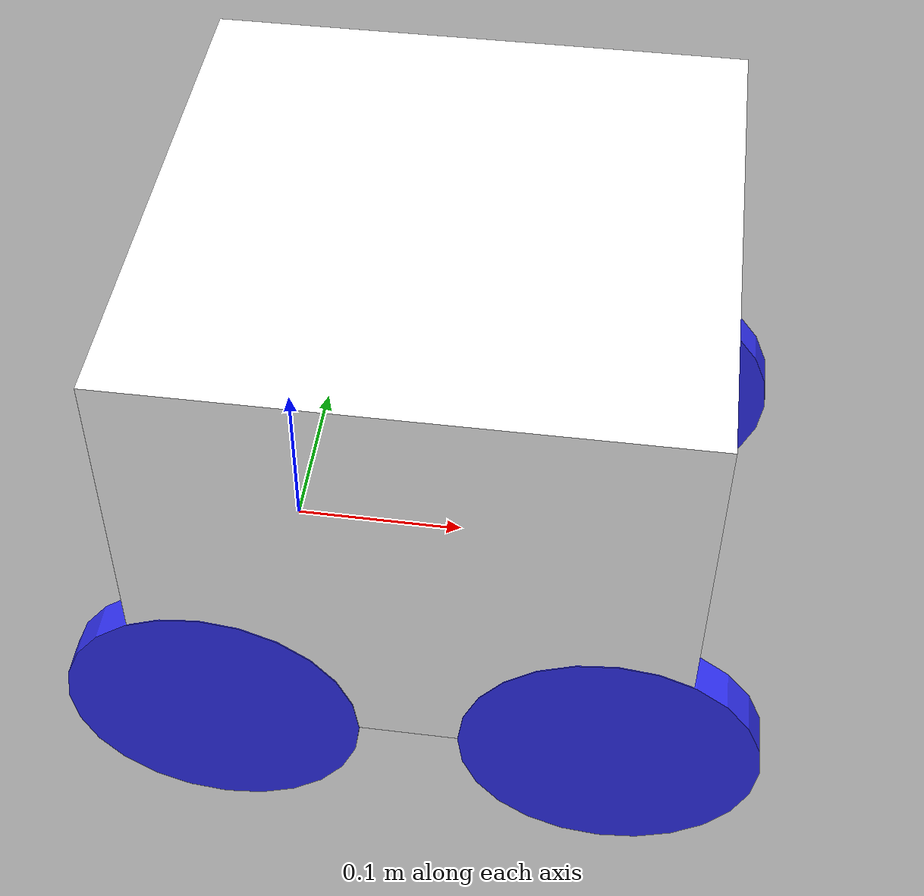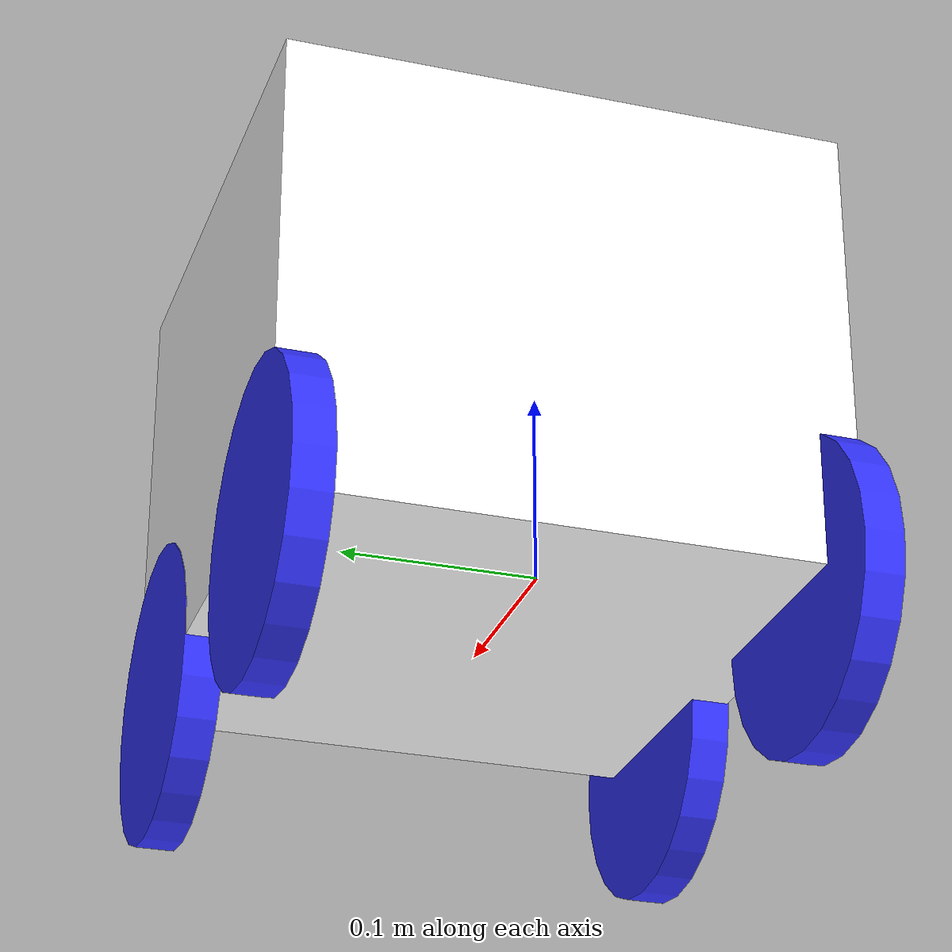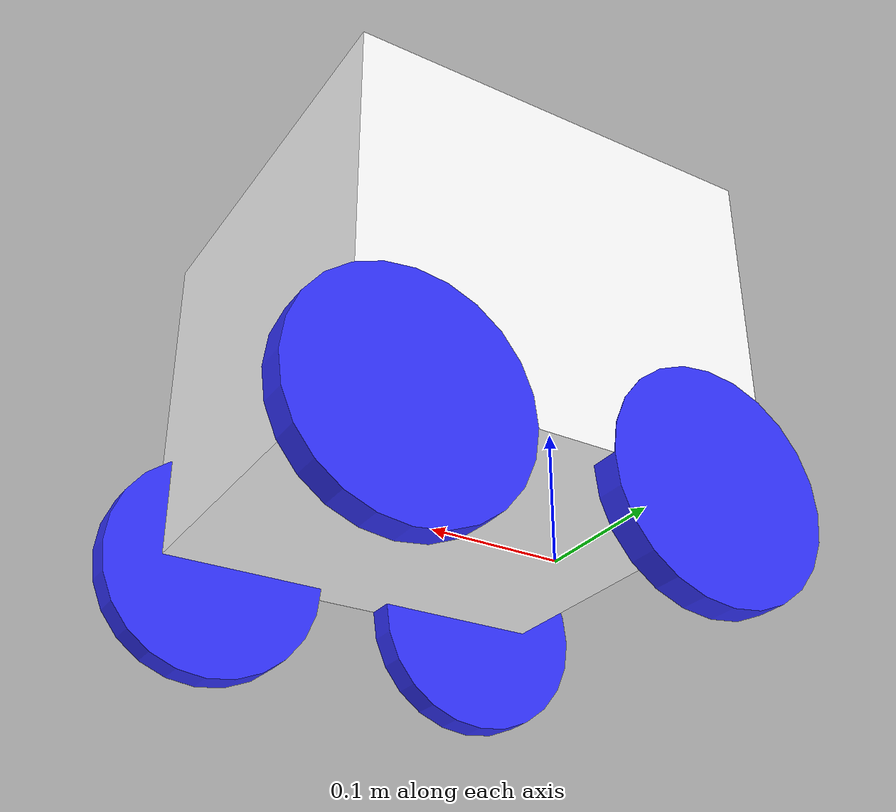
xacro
<?xml version="1.0"?>
<robot xmlns:xacro="http://www.ros.org/wiki/xacro" >

    <xacro:include filename="inertial_macros.xacro"/>

    <material name="white">
        <color rgba="1 1 1 1" />
    </material>

    <material name="orange">
        <color rgba="1 0.3 0.1 1"/>
    </material>

    <material name="blue">
        <color rgba="0.2 0.2 1 1"/>
    </material>

    <material name="black">
        <color rgba="0 0 0 1"/>
    </material>

    <!-- BASE LINK -->

    <link name="base_link">

    </link>

    <!-- CHASSIS LINK -->

    <joint name="chassis_joint" type="fixed">
        <parent link="base_link"/>
        <child link="chassis"/>
        <origin xyz="-0.1 0 0"/>
    </joint>

    <link name="chassis">
        <visual>
            <origin xyz="0.19 0 0.125"/>
            <geometry>
                <box size="0.3 0.3 0.25"/>
            </geometry>
            <material name="white"/>
        </visual>
        <collision>
            <origin xyz="0.19 0 0.125"/>
            <geometry>
                <box size="0.3 0.3 0.15"/>
            </geometry>
        </collision>
        <xacro:inertial_box mass="0.5" x="0.3" y="0.3" z="0.15">
            <origin xyz="0.15 0 0.075" rpy="0 0 0"/>
        </xacro:inertial_box>
    </link>

    <gazebo reference="chassis">
        <material>Gazebo/White</material>
    </gazebo>

    <!-- LEFT BACK WHEEL LINK -->

    <joint name="left_back_wheel_joint" type="continuous">
        <parent link="base_link"/>
        <child link="left_back_wheel"/>
        <origin xyz="-0.02 0.1400242 0" rpy="-${pi/2} 0 0" />
        <axis xyz="0 0 1"/>
    </joint>

    <link name="left_back_wheel">
        <visual>
            <geometry>
                <cylinder radius="0.08255" length="0.020955"/>
            </geometry>
            <material name="blue"/>
        </visual>
        <collision>
            <geometry>
                <cylinder radius="0.08255" length="0.020955"/>
            </geometry>
        </collision>
        <xacro:inertial_cylinder mass="0.1" length="0.020955" radius="0.08255">
            <origin xyz="0 0 0" rpy="0 0 0"/>
        </xacro:inertial_cylinder>
    </link>

    <gazebo reference="left_back_wheel">
        <material>Gazebo/Blue</material>
    </gazebo>

    <!-- RIGHT BACK WHEEL LINK -->

    <joint name="right_back_wheel_joint" type="continuous">
        <parent link="base_link"/>
        <child link="right_back_wheel"/>
        <origin xyz="-0.02 -0.1400242 0" rpy="${pi/2} 0 0" />
        <axis xyz="0 0 -1"/>
    </joint>

    <link name="right_back_wheel">
        <visual>
            <geometry>
                <cylinder radius="0.08255" length="0.020955"/>
            </geometry>
            <material name="blue"/>
        </visual>
        <collision>
            <geometry>
                <cylinder radius="0.08255" length="0.020955"/>
            </geometry>
        </collision>
        <xacro:inertial_cylinder mass="0.1" length="0.020955" radius="0.08255">
            <origin xyz="0 0 0" rpy="0 0 0"/>
        </xacro:inertial_cylinder>
    </link>

    <gazebo reference="right_back_wheel">
        <material>Gazebo/Blue</material>
    </gazebo>

    <!-- LEFT FRONT WHEEL LINK -->

    <joint name="left_front_wheel_joint" type="continuous">
        <parent link="base_link"/>
        <child link="left_front_wheel"/>
        <origin xyz="0.2 0.1400242 0" rpy="-${pi/2} 0 0" />
        <axis xyz="0 0 1"/>
    </joint>

    <link name="left_front_wheel">
        <visual>
            <geometry>
                <cylinder radius="0.08255" length="0.020955"/>
            </geometry>
            <material name="blue"/>
        </visual>
        <collision>
            <geometry>
                <cylinder radius="0.08255" length="0.020955"/>
            </geometry>
        </collision>
        <xacro:inertial_cylinder mass="0.1" length="0.020955" radius="0.08255">
            <origin xyz="0 0 0" rpy="0 0 0"/>
        </xacro:inertial_cylinder>
    </link>

    <gazebo reference="left_front_wheel">
        <material>Gazebo/Blue</material>
    </gazebo>

    <!-- RIGHT FRONT WHEEL LINK -->

    <joint name="right_front_wheel_joint" type="continuous">
        <parent link="base_link"/>
        <child link="right_front_wheel"/>
        <origin xyz="0.2 -0.1400242 0" rpy="${pi/2} 0 0" />
        <axis xyz="0 0 -1"/>
    </joint>

    <link name="right_front_wheel">
        <visual>
            <geometry>
                <cylinder radius="0.08255" length="0.020955"/>
            </geometry>
            <material name="blue"/>
        </visual>
        <collision>
            <geometry>
                <cylinder radius="0.08255" length="0.020955"/>
            </geometry>
        </collision>
        <xacro:inertial_cylinder mass="0.1" length="0.020955" radius="0.08255">
            <origin xyz="0 0 0" rpy="0 0 0"/>
        </xacro:inertial_cylinder>
    </link>

    <gazebo reference="right_front_wheel">
        <material>Gazebo/Blue</material>
        <mu1 value="0.001"/>
        <mu2 value="0.001"/>
    </gazebo>

</robot>

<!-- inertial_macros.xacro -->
<robot xmlns:xacro="http://www.ros.org/wiki/xacro">

  <!-- box inertial macro with explicit origin parameters -->
  <xacro:macro name="inertial_box"
               params="mass:=1.0 x:=0.1 y:=0.1 z:=0.1
                       origin_xyz:='0 0 0' origin_rpy:='0 0 0'">
    <inertial>
      <origin xyz="${origin_xyz}" rpy="${origin_rpy}"/>
      <mass value="${mass}"/>
      <inertia
        ixx="${mass*(y*y + z*z)/12}" ixy="0" ixz="0"
        iyy="${mass*(x*x + z*z)/12}" iyz="0"
        izz="${mass*(x*x + y*y)/12}"
      />
    </inertial>
  </xacro:macro>

  <!-- cylinder inertial macro with explicit origin parameters -->
  <xacro:macro name="inertial_cylinder"
               params="mass:=1.0 radius:=0.1 length:=0.1
                       origin_xyz:='0 0 0' origin_rpy:='0 0 0'">
    <inertial>
      <origin xyz="${origin_xyz}" rpy="${origin_rpy}"/>
      <mass value="${mass}"/>
      <inertia
        ixx="${mass*(3*radius*radius + length*length)/12}"
        ixy="0" ixz="0"
        iyy="${mass*(3*radius*radius + length*length)/12}"
        iyz="0"
        izz="${mass*radius*radius/2}"
      />
    </inertial>
  </xacro:macro>

  <!-- sphere inertial macro with explicit origin parameters -->
  <xacro:macro name="inertial_sphere" params="mass radius *origin">
      <inertial>
          <xacro:insert_block name="origin"/>
          <mass value="${mass}" />
          <inertia ixx="${(2/5) * mass * (radius*radius)}" ixy="0.0" ixz="0.0"
                  iyy="${(2/5) * mass * (radius*radius)}" iyz="0.0"
                  izz="${(2/5) * mass * (radius*radius)}" />
      </inertial>
  </xacro:macro>

</robot>
